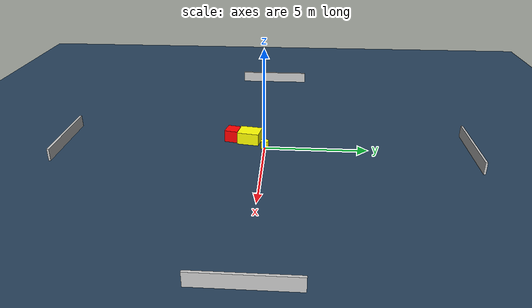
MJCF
<?xml version="1.0" ?>
<mujoco model="generated_environment">
  <option timestep="0.01" integrator="RK4" cone="elliptic"/>
  <default>
    <geom density="1"/>
  </default>
  <asset>
    <texture builtin="gradient" height="3072" name="skybox" rgb1="0.3 0.5 0.7" rgb2="0 0 0" type="skybox" width="512"/>
    <texture builtin="checker" height="300" name="groundplane" rgb1="0.2 0.3 0.4" rgb2="0.1 0.2 0.3" type="2d" width="300"/>
    <material name="groundplane" reflectance="0.2" texrepeat="5 5" texture="groundplane"/>
  </asset>
  <worldbody>
    <light dir="0 0 -1" directional="true" pos="0 0 1.5"/>
    <geom condim="3" friction="0.5 0.005 0.001" material="groundplane" name="floor" pos="0 0 0" size="0 0 0.05" type="plane"/>
    <body name="walls">
      <geom name="wall_1" condim="4" pos="-10.0 0.0 0.3" rgba="0.800000011920929 0.800000011920929 0.800000011920929 1.0" size="0.05 2.0 0.3" type="box"/>
      <geom name="wall_2" condim="4" pos="10.0 0.0 0.3" rgba="0.800000011920929 0.800000011920929 0.800000011920929 1.0" size="0.05 2.0 0.3" type="box"/>
      <geom name="wall_3" condim="4" pos="0.0 -10.0 0.3" rgba="0.800000011920929 0.800000011920929 0.800000011920929 1.0" size="2.0 0.05 0.3" type="box"/>
      <geom name="wall_4" condim="4" pos="0.0 10.0 0.3" rgba="0.800000011920929 0.800000011920929 0.800000011920929 1.0" size="2.0 0.05 0.3" type="box"/>
    </body>
    <body name="robot">
      <joint name="joint_x" type="slide" pos="0 0 0" axis="1 0 0"/>
      <joint name="joint_y" type="slide" pos="0 0 0" axis="0 1 0"/>
      <geom name="robot" type="cylinder" pos="0.0 0.0 0.2" size="0.2 0.2 0.0" mass="5.0" friction="1.0 0.005 0.0001" condim="4" rgba="1.0 1.0 0.0 1.0"/>
    </body>
    <body name="obstacle_1_movable">
      <geom name="obstacle_1_movable" condim="4" pos="-0.733310502129475 -0.7927724337624721 0.3" euler="0 0 260.7971854172406" friction="0.0 0.005 0.001" rgba="1.0 1.0 0.0 1.0" size="0.5418918883161794 0.44214083279040134 0.3" type="box" mass="0.1"/>
      <joint type="free"/>
    </body>
    <body name="obstacle_2_static">
      <geom name="obstacle_2_static" condim="4" pos="-0.8906719259403933 -1.6648138194828714 0.3" euler="0 0 258.5723086102864" friction="0.0 0.005 0.001" rgba="1.0 0.0 0.0 1.0" size="0.3301477627392597 0.35034343147978864 0.3" type="box"/>
    </body>
  </worldbody>
  <actuator>
    <motor name="actuator_x" joint="joint_x" gear="1" ctrlrange="-1 1"/>
    <motor name="actuator_y" joint="joint_y" gear="1" ctrlrange="-1 1"/>
  </actuator>
</mujoco>
